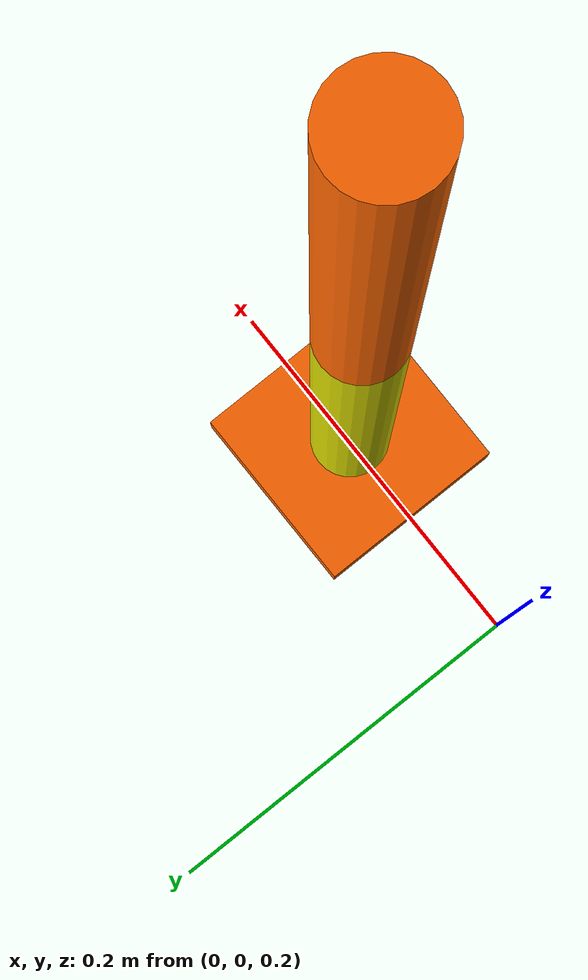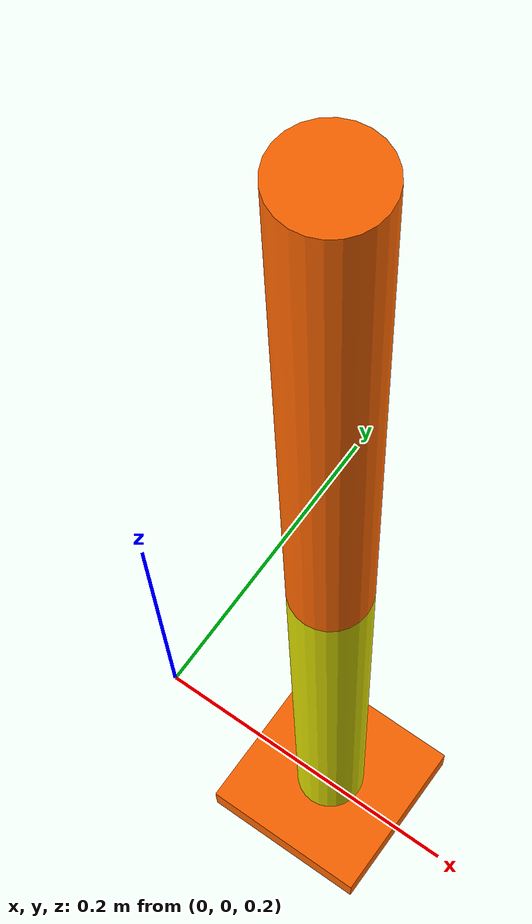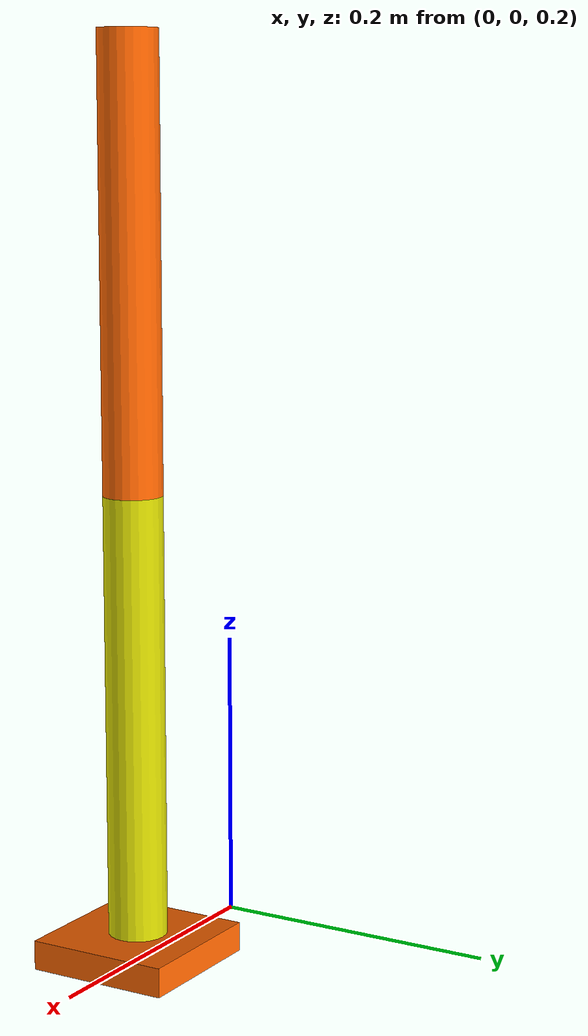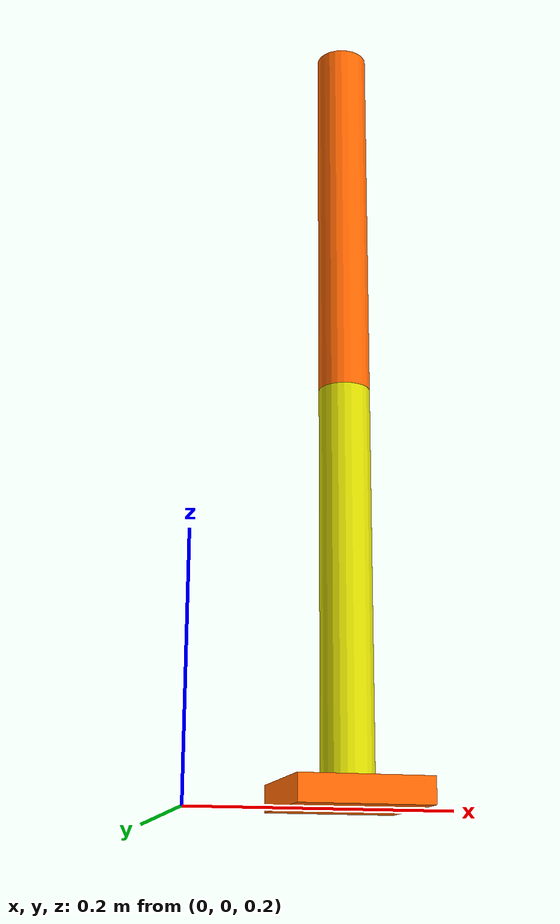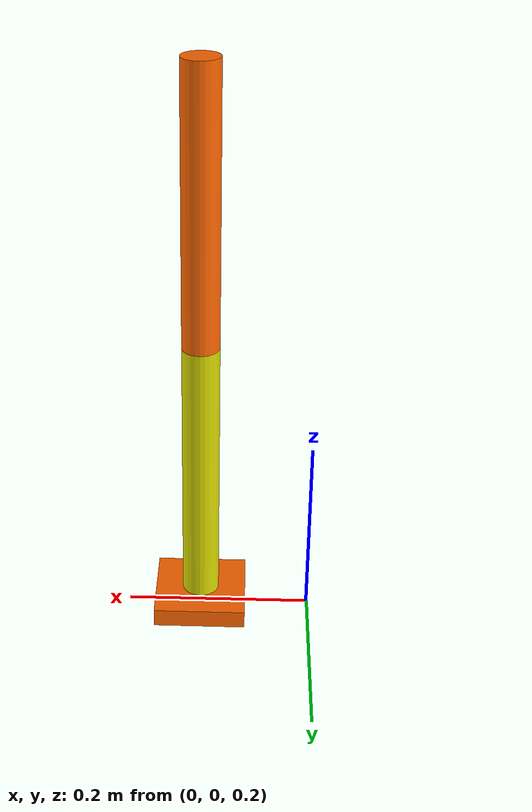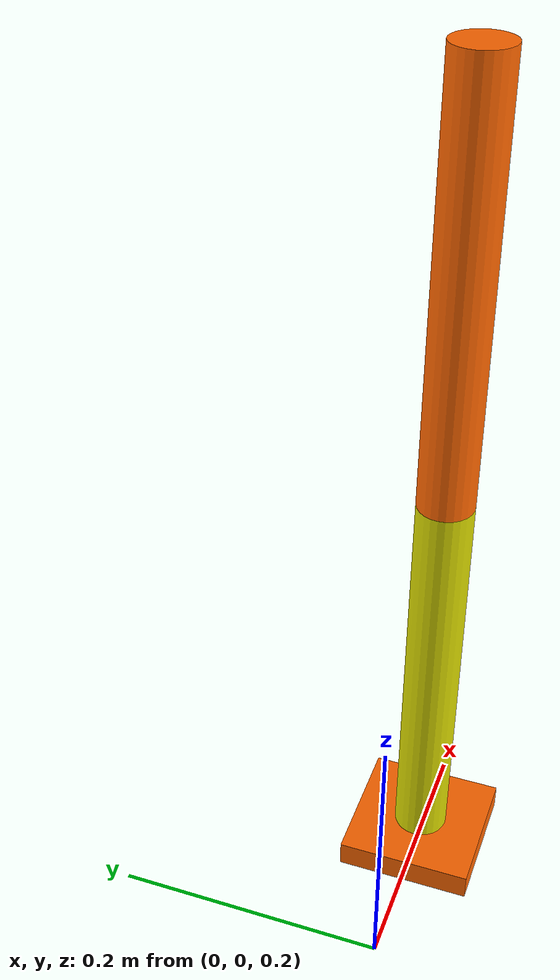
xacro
<?xml version="1.0"?>
<robot name="myArm" xmlns:xacro="http://www.ros.org/wiki/xacro" >
    <xacro:property name="base_length" value="0.6" />
    <xacro:property name="base_width" value="0.4" />
    <xacro:property name="base_height" value="0.2" />
    <link name="base_link" />
    <xacro:include filename="common_properties.xacro" />
    <xacro:include filename="robotic_arm.xacro" />
</robot>

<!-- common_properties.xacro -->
<robot xmlns:xacro="http://www.ros.org/wiki/xacro" >
    <material name="red">
        <color rgba="0.7 0 0 1" />
    </material>
    <material name="green">
        <color rgba="0 0.7 0 1" />
    </material>
    <material name="blue">
        <color rgba="0 0 0.7 1" />
    </material>
    <material name="orange">
        <color rgba="1 0.4 0 1" />
    </material>
    <material name="yellow">
        <color rgba="0.85 0.85 0 1" />
    </material>

    <xacro:macro name="box_inertia" params="l w h m xyz rpy" >
        <inertial>
            <origin xyz="${xyz}" rpy="${rpy}"/>
            <mass value="${m}" />
            <inertia ixx="${(m/12) * (h*h + l*l)}" ixy="0" ixz="0"
                     iyy="${(m/12) * (w*w + l*l)}" iyz="0"
                     izz="${(m/12) * (w*w + h*h)}" />
        </inertial>
    </xacro:macro>

    <xacro:macro name="cylinder_inertia" params="r l m xyz rpy" >
        <inertial>
            <origin xyz="${xyz}" rpy="${rpy}"/>
            <mass value="${m}" />
            <inertia ixx="${(m/12) * (3*r*r + l*l)}" ixy="0" ixz="0"
                     iyy="${(m/12) * (3*r*r + l*l)}" iyz="0"
                     izz="${(m/2) * (r*r)}" />
        </inertial>
    </xacro:macro>

    <xacro:macro name="sphere_inertia" params="r m xyz rpy" >
        <inertial>
            <origin xyz="${xyz}" rpy="${rpy}"/>
            <mass value="${m}" />
            <inertia ixx="${(2*m/5) * (r*r)}" ixy="0" ixz="0"
                     iyy="${(2*m/5) * (r*r)}" iyz="0"
                     izz="${(2*m/5) * (r*r)}" />
        </inertial>
    </xacro:macro>
</robot>

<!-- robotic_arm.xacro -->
<robot xmlns:xacro="http://www.ros.org/wiki/xacro" >
    <xacro:property name="arm_base_length" value="0.1" />
    <xacro:property name="arm_base_width" value="0.1" />
    <xacro:property name="arm_base_height" value="0.02" />
    <xacro:property name="forearm_radius" value="0.02" />
    <xacro:property name="forearm_length" value="0.3" />
    <xacro:property name="hand_radius" value="0.02" />
    <xacro:property name="hand_length" value="0.3" />
    <link name="arm_base_link">
        <visual>
            <geometry>
                <box size="${arm_base_length} ${arm_base_width} ${arm_base_height}" />
            </geometry>
            <origin xyz="0 0 0" rpy="0 0 0" />
            <material name="orange" />
        </visual>
        <collision>
            <geometry>
                <box size="${arm_base_length} ${arm_base_width} ${arm_base_height}" />
            </geometry>
            <origin xyz="0 0 0" rpy="0 0 0" />
        </collision>
        <xacro:box_inertia m="0.5" l="${arm_base_length}" w="${arm_base_width}" h="${arm_base_height}"
                          xyz="0 0 0" rpy="0 0 0" />
    </link>

    <joint name="base_arm_base_joint" type="fixed">
        <parent link="base_link" />
        <child link="arm_base_link" />
        <origin xyz="${base_length / 5} 0 ${base_height + (arm_base_height / 2 )}" rpy="0 0 0" />
        <axis xyz="1 0 0" />
    </joint>

    <link name="forearm_link" >
        <visual>
            <geometry>
                <cylinder radius="${forearm_radius}" length="${forearm_length}" />
            </geometry>
            <origin xyz="0 0 ${forearm_length / 2}" rpy="0 0 0"/>
            <material name="yellow" />
        </visual>
        <collision>
            <geometry>
                <cylinder radius="${forearm_radius}" length="${forearm_length}" />
            </geometry>
            <origin xyz="0 0 ${forearm_length / 2}" rpy="0 0 0"/>
        </collision>
        <xacro:cylinder_inertia m="0.3" r="${forearm_radius}" l="${forearm_length}"
                                xyz="0 0 ${forearm_length / 2}" rpy="0 0 0"/>
    </link>

    <joint name="arm_base_forearm_joint" type="revolute">
        <parent link="arm_base_link" />
        <child link="forearm_link" />
        <origin xyz="0 0 ${arm_base_height / 2}" rpy="0 0 0" />
        <limit lower="0" upper="${pi / 2}" effort="100" velocity="100" />
        <axis xyz="0 1 0" />
        <dynamics friction="0.05" damping="0.1" />
    </joint>

    <link name="hand_link" >
        <visual>
            <geometry>
                <cylinder radius="${hand_radius}" length="${hand_length}" />
            </geometry>
            <origin xyz="0 0 ${forearm_length / 2}" rpy="0 0 0" />
            <material name="orange" />
        </visual>
        <collision>
            <geometry>
                <cylinder radius="${hand_radius}" length="${hand_length}" />
            </geometry>
            <origin xyz="0 0 ${hand_length / 2}" rpy="0 0 0" />
        </collision>
    <xacro:cylinder_inertia m="0.3" r="${hand_radius}" l="${hand_length}"
                            xyz="0 0 ${hand_length / 2}" rpy="0 0 0" />
    </link>

    <joint name="forearm_hand_joint" type="revolute">
        <parent link="forearm_link"/>
        <child link="hand_link"/>
        <origin xyz="0 0 ${forearm_length}" rpy="0 0 0"/>
        <axis xyz="0 1 0"/>
        <dynamics friction="0.05" damping="0.1" />
        <limit lower="0" upper="${pi / 2}" effort="100" velocity="100"/>
    </joint>
</robot>
